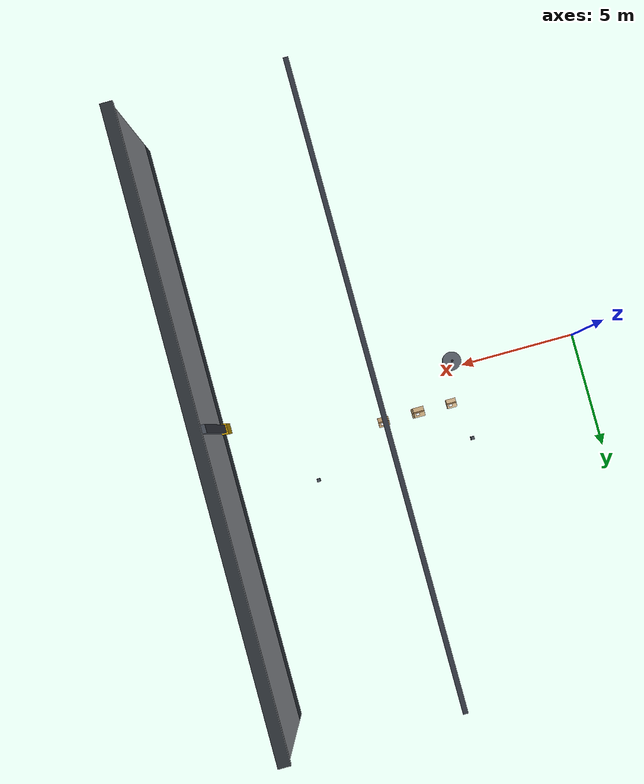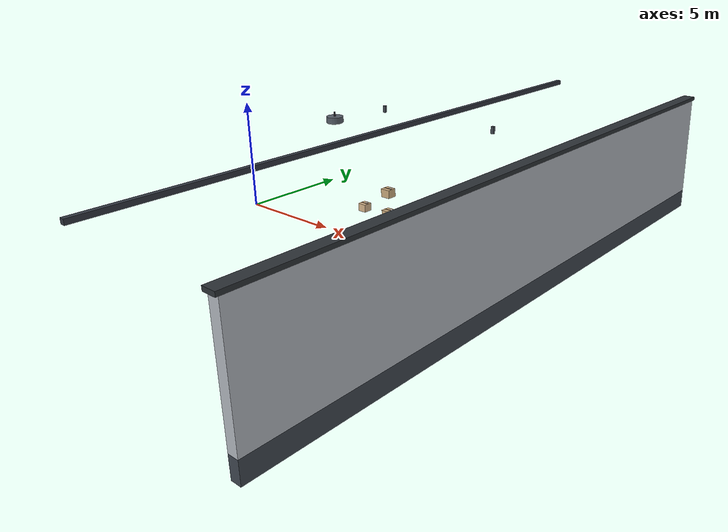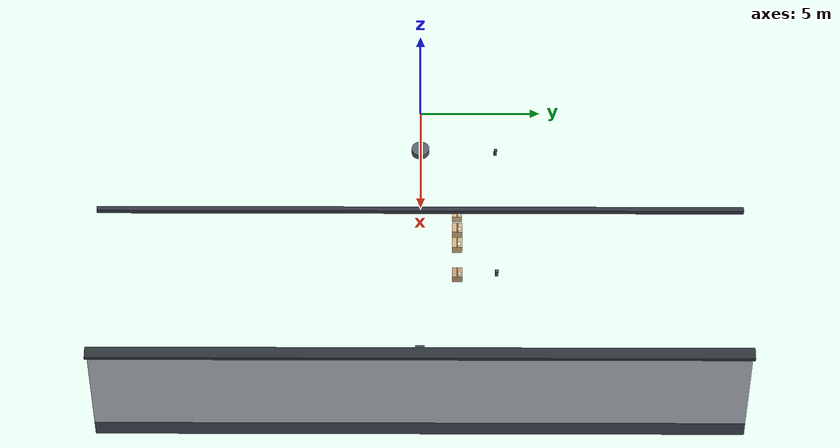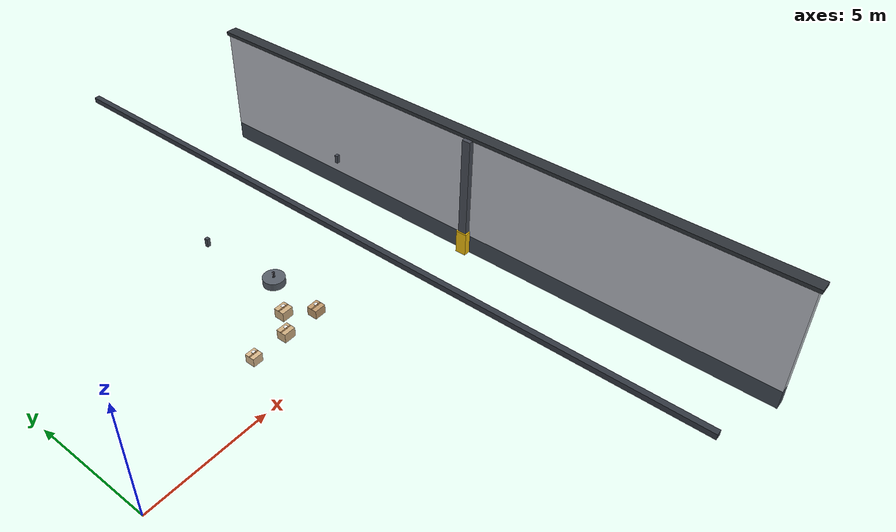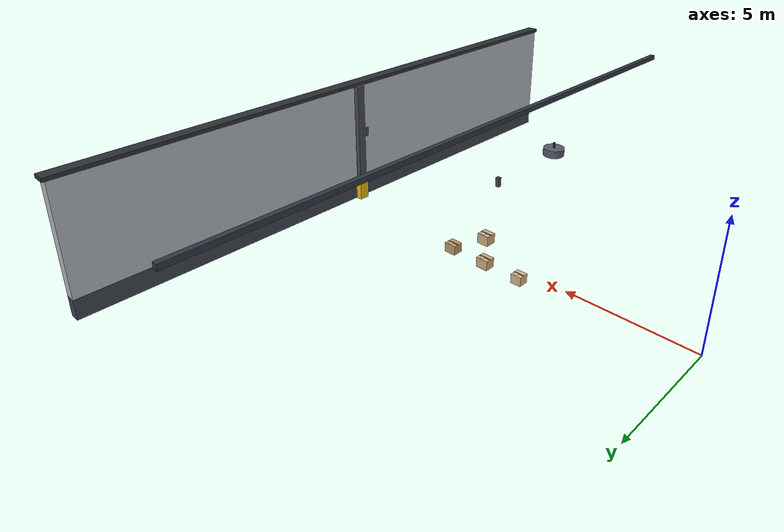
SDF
<sdf version="1.8">
 <world name="warehouse_3d">
  <model name="warehouse_architecture">
   <static>true</static>
   <link name="wall_east_base">
    <pose>16.0000 0.0000 0.4000 0.0000 0.0000 0.0000</pose>
    <collision name="wall_east_base_col">
     <geometry><box><size>0.4000 25.6000 0.8000</size></box></geometry>
    </collision>
    <visual name="wall_east_base_vis">
     <geometry><box><size>0.4000 25.6000 0.8000</size></box></geometry>
     <material>
      <ambient>0.163 0.182 0.208 1.00</ambient>
      <diffuse>0.250 0.280 0.320 1.00</diffuse>
      <specular>0.15 0.15 0.15 1.0</specular>
     </material>
    </visual>
   </link>
   <link name="wall_east_upper">
    <pose>16.0000 0.0000 3.0000 0.0000 0.0000 0.0000</pose>
    <collision name="wall_east_upper_col">
     <geometry><box><size>0.4000 25.6000 4.4000</size></box></geometry>
    </collision>
    <visual name="wall_east_upper_vis">
     <geometry><box><size>0.4000 25.6000 4.4000</size></box></geometry>
     <material>
      <ambient>0.468 0.481 0.501 1.00</ambient>
      <diffuse>0.720 0.740 0.770 1.00</diffuse>
      <specular>0.15 0.15 0.15 1.0</specular>
     </material>
    </visual>
   </link>
   <link name="wall_east_coping">
    <pose>16.0000 0.0000 5.2500 0.0000 0.0000 0.0000</pose>
    <collision name="wall_east_coping_col">
     <geometry><box><size>0.5000 25.8000 0.1500</size></box></geometry>
    </collision>
    <visual name="wall_east_coping_vis">
     <geometry><box><size>0.5000 25.8000 0.1500</size></box></geometry>
     <material>
      <ambient>0.117 0.130 0.143 1.00</ambient>
      <diffuse>0.180 0.200 0.220 1.00</diffuse>
      <specular>0.15 0.15 0.15 1.0</specular>
     </material>
    </visual>
   </link>
   <link name="window_east">
    <pose>15.8500 0.0000 4.2000 0.0000 0.0000 0.0000</pose>
    <visual name="window_east_vis">
     <geometry><box><size>0.0500 20.0000 1.0000</size></box></geometry>
     <material>
      <ambient>0.293 0.423 0.552 0.70</ambient>
      <diffuse>0.450 0.650 0.850 0.70</diffuse>
      <specular>0.15 0.15 0.15 1.0</specular>
     </material>
    </visual>
   </link>
   <link name="col_6_base">
    <pose>15.7500 0.0000 0.5000 0.0000 0.0000 0.0000</pose>
    <collision name="col_6_base_col"><geometry><box><size>0.4500 0.4500 1.0000</size></box></geometry></collision>
    <visual name="col_6_base_vis">
     <geometry><box><size>0.4500 0.4500 1.0000</size></box></geometry>
     <material>
      <ambient>0.617 0.488 0.033 1.00</ambient>
      <diffuse>0.950 0.750 0.050 1.00</diffuse>
      <specular>0.15 0.15 0.15 1.0</specular>
     </material>
    </visual>
   </link>
   <link name="col_6_stem">
    <pose>15.7500 0.0000 3.1000 0.0000 0.0000 0.0000</pose>
    <collision name="col_6_stem_col"><geometry><box><size>0.3500 0.3500 4.2000</size></box></geometry></collision>
    <visual name="col_6_stem_vis">
     <geometry><box><size>0.3500 0.3500 4.2000</size></box></geometry>
     <material>
      <ambient>0.182 0.195 0.221 1.00</ambient>
      <diffuse>0.280 0.300 0.340 1.00</diffuse>
      <specular>0.15 0.15 0.15 1.0</specular>
     </material>
    </visual>
   </link>
   <link name="truss_web_2_3">
    <pose>6.0000 3.0000 5.0500 0.0000 0.0000 0.0000</pose>
    <visual name="truss_web_2_3_vis">
     <geometry><box><size>0.1200 0.1200 0.3000</size></box></geometry>
     <material>
      <ambient>0.182 0.195 0.221 1.00</ambient>
      <diffuse>0.280 0.300 0.340 1.00</diffuse>
      <specular>0.15 0.15 0.15 1.0</specular>
     </material>
    </visual>
   </link>
   <link name="truss_web_2_4">
    <pose>12.0000 3.0000 5.0500 0.0000 0.0000 0.0000</pose>
    <visual name="truss_web_2_4_vis">
     <geometry><box><size>0.1200 0.1200 0.3000</size></box></geometry>
     <material>
      <ambient>0.182 0.195 0.221 1.00</ambient>
      <diffuse>0.280 0.300 0.340 1.00</diffuse>
      <specular>0.15 0.15 0.15 1.0</specular>
     </material>
    </visual>
   </link>
   <link name="girder_2">
    <pose>9.0000 0.0000 5.1500 0.0000 0.0000 0.0000</pose>
    <visual name="girder_2_vis">
     <geometry><box><size>0.2000 25.6000 0.2000</size></box></geometry>
     <material>
      <ambient>0.130 0.143 0.169 1.00</ambient>
      <diffuse>0.200 0.220 0.260 1.00</diffuse>
      <specular>0.15 0.15 0.15 1.0</specular>
     </material>
    </visual>
   </link>
   <link name="fixture_bell_7">
    <pose>6.0000 0.0000 5.1500 0.0000 0.0000 0.0000</pose>
    <visual name="fixture_bell_7_vis">
     <geometry><cylinder><radius>0.3500</radius><length>0.2500</length></cylinder></geometry>
     <material>
      <ambient>0.227 0.247 0.273 1.00</ambient>
      <diffuse>0.350 0.380 0.420 1.00</diffuse>
      <specular>0.2 0.2 0.2 1.0</specular>
     </material>
    </visual>
   </link>
   <link name="fixture_stem_7">
    <pose>6.0000 0.0000 5.3500 0.0000 0.0000 0.0000</pose>
    <visual name="fixture_stem_7_vis">
     <geometry><cylinder><radius>0.0400</radius><length>0.2000</length></cylinder></geometry>
     <material>
      <ambient>0.098 0.098 0.117 1.00</ambient>
      <diffuse>0.150 0.150 0.180 1.00</diffuse>
      <specular>0.2 0.2 0.2 1.0</specular>
     </material>
    </visual>
   </link>
   <link name="fixture_lens_7">
    <pose>6.0000 0.0000 5.0200 0.0000 0.0000 0.0000</pose>
    <visual name="fixture_lens_7_vis">
     <geometry><cylinder><radius>0.3200</radius><length>0.0400</length></cylinder></geometry>
     <material>
      <ambient>0.617 0.637 0.650 1.00</ambient>
      <diffuse>0.950 0.980 1.000 1.00</diffuse>
      <specular>0.2 0.2 0.2 1.0</specular>
      <emissive>0.850 0.880 0.950 1.0</emissive>
     </material>
    </visual>
   </link>
  </model>
  <model name="package_P072">
   <static>true</static>
   <pose>6.00 1.50 0.82 0 0 0</pose>
   <link name="box_link">
    <collision name="box_col"><geometry><box><size>0.41 0.39 0.35</size></box></geometry></collision>
    <visual name="box_vis">
     <geometry><box><size>0.41 0.39 0.35</size></box></geometry>
     <material>
      <ambient>0.60 0.51 0.39 1.0</ambient>
      <diffuse>0.86 0.73 0.56 1.0</diffuse>
      <specular>0.08 0.08 0.08 1.0</specular>
     </material>
    </visual>
    <visual name="top_tape">
     <pose>0 0 0.1760 0 0 0</pose>
     <geometry><box><size>0.412 0.05 0.002</size></box></geometry>
     <material><ambient>0.48 0.35 0.20 1.0</ambient><diffuse>0.55 0.40 0.24 1.0</diffuse></material>
    </visual>
    <visual name="shipping_label">
     <pose>0.061 0.078 0.1770 0 0 0</pose>
     <geometry><box><size>0.14 0.10 0.002</size></box></geometry>
     <material><ambient>0.92 0.92 0.92 1.0</ambient><diffuse>0.98 0.98 0.98 1.0</diffuse></material>
    </visual>
   </link>
  </model>
  <model name="package_P073">
   <static>true</static>
   <pose>7.50 1.50 0.82 0 0 0</pose>
   <link name="box_link">
    <collision name="box_col"><geometry><box><size>0.48 0.40 0.38</size></box></geometry></collision>
    <visual name="box_vis">
     <geometry><box><size>0.48 0.40 0.38</size></box></geometry>
     <material>
      <ambient>0.57 0.48 0.36 1.0</ambient>
      <diffuse>0.82 0.69 0.51 1.0</diffuse>
      <specular>0.08 0.08 0.08 1.0</specular>
     </material>
    </visual>
    <visual name="top_tape">
     <pose>0 0 0.1910 0 0 0</pose>
     <geometry><box><size>0.482 0.05 0.002</size></box></geometry>
     <material><ambient>0.48 0.35 0.20 1.0</ambient><diffuse>0.55 0.40 0.24 1.0</diffuse></material>
    </visual>
    <visual name="shipping_label">
     <pose>0.072 0.080 0.1920 0 0 0</pose>
     <geometry><box><size>0.14 0.10 0.002</size></box></geometry>
     <material><ambient>0.92 0.92 0.92 1.0</ambient><diffuse>0.98 0.98 0.98 1.0</diffuse></material>
    </visual>
   </link>
  </model>
  <model name="package_P074">
   <static>true</static>
   <pose>9.00 1.50 0.82 0 0 0</pose>
   <link name="box_link">
    <collision name="box_col"><geometry><box><size>0.47 0.41 0.36</size></box></geometry></collision>
    <visual name="box_vis">
     <geometry><box><size>0.47 0.41 0.36</size></box></geometry>
     <material>
      <ambient>0.53 0.43 0.30 1.0</ambient>
      <diffuse>0.76 0.61 0.43 1.0</diffuse>
      <specular>0.08 0.08 0.08 1.0</specular>
     </material>
    </visual>
    <visual name="top_tape">
     <pose>0 0 0.1810 0 0 0</pose>
     <geometry><box><size>0.472 0.05 0.002</size></box></geometry>
     <material><ambient>0.48 0.35 0.20 1.0</ambient><diffuse>0.55 0.40 0.24 1.0</diffuse></material>
    </visual>
    <visual name="shipping_label">
     <pose>0.070 0.082 0.1820 0 0 0</pose>
     <geometry><box><size>0.14 0.10 0.002</size></box></geometry>
     <material><ambient>0.92 0.92 0.92 1.0</ambient><diffuse>0.98 0.98 0.98 1.0</diffuse></material>
    </visual>
   </link>
  </model>
  <model name="package_P076">
   <static>true</static>
   <pose>7.50 1.50 1.82 0 0 0</pose>
   <link name="box_link">
    <collision name="box_col"><geometry><box><size>0.45 0.41 0.37</size></box></geometry></collision>
    <visual name="box_vis">
     <geometry><box><size>0.45 0.41 0.37</size></box></geometry>
     <material>
      <ambient>0.57 0.48 0.36 1.0</ambient>
      <diffuse>0.82 0.69 0.51 1.0</diffuse>
      <specular>0.08 0.08 0.08 1.0</specular>
     </material>
    </visual>
    <visual name="top_tape">
     <pose>0 0 0.1860 0 0 0</pose>
     <geometry><box><size>0.452 0.05 0.002</size></box></geometry>
     <material><ambient>0.48 0.35 0.20 1.0</ambient><diffuse>0.55 0.40 0.24 1.0</diffuse></material>
    </visual>
    <visual name="shipping_label">
     <pose>0.068 0.082 0.1870 0 0 0</pose>
     <geometry><box><size>0.14 0.10 0.002</size></box></geometry>
     <material><ambient>0.92 0.92 0.92 1.0</ambient><diffuse>0.98 0.98 0.98 1.0</diffuse></material>
    </visual>
   </link>
  </model>
 </world>
</sdf>
